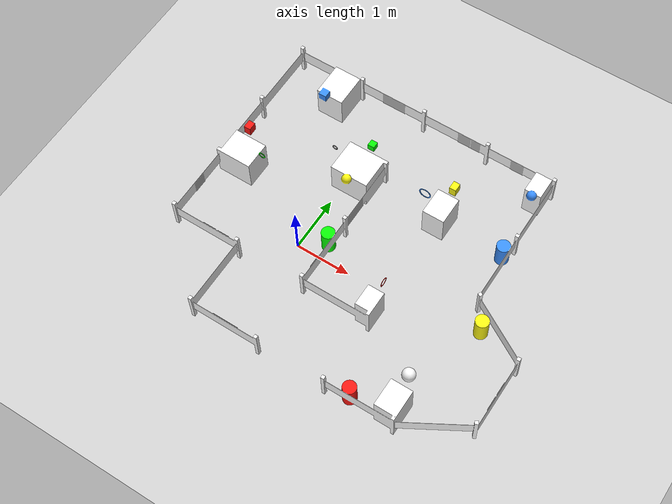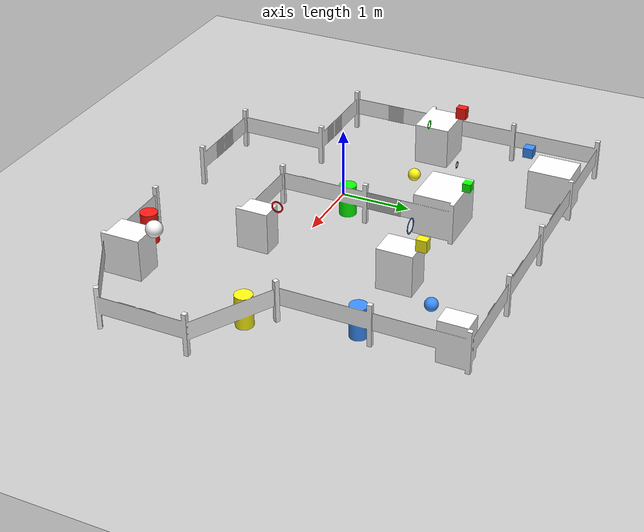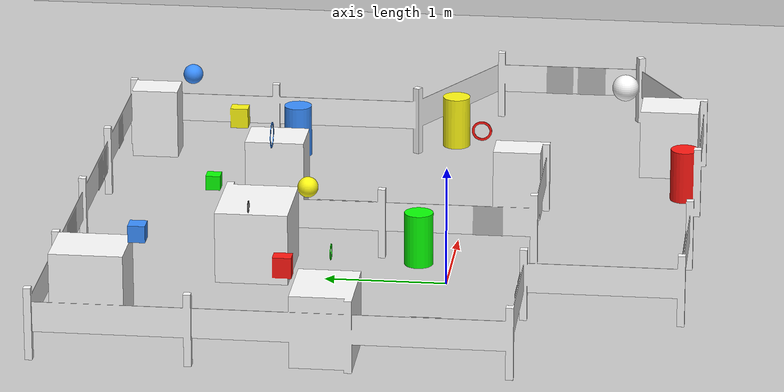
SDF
<sdf version="1.6">
 <world name="default">
  <model name="ground_plane">
   <static>1</static>
   <link name="link">
    <collision name="collision">
     <geometry><plane><normal>0 0 1</normal><size>100 100</size></plane></geometry>
     <surface><friction><ode><mu>100</mu><mu2>50</mu2></ode></friction></surface>
    </collision>
    <visual name="visual">
     <cast_shadows>0</cast_shadows>
     <geometry><plane><normal>0 0 1</normal><size>100 100</size></plane></geometry>
     <material>
      <script><uri>file://media/materials/scripts/gazebo.material</uri><name>Gazebo/Grey</name></script>
     </material>
    </visual>
   </link>
  </model>
  <model name="classroom">
   <pose>-2 -2 0 0 -0 0</pose>
   <static>1</static>
   <link name="body">
    <collision name="classroom_collision">
     <geometry><mesh><uri>model://task3/meshes/rins_eval3_1.dae</uri><scale>1 1 1</scale></mesh></geometry>
    </collision>
    <visual name="visual">
     <geometry><mesh><uri>model://task3/meshes/rins_eval3_1.dae</uri><scale>1 1 1</scale></mesh></geometry>
    </visual>
    <sensor name="my_collision sensor" type="contact">
     <contact><collision>classroom_collision</collision><topic>/collision_contact</topic></contact>
     <plugin name="gazebo_ros_bumper_controller" filename="libgazebo_ros_bumper.so">
      <alwaysOn>true</alwaysOn>
      <updateRate>1</updateRate>
      <bumperTopicName>/turtlebot_contact</bumperTopicName>
      <frameName>world</frameName>
     </plugin>
    </sensor>
   </link>
  </model>
  <gravity>0 0 -9.8</gravity>
  <magnetic_field>6e-06 2.3e-05 -4.2e-05</magnetic_field>
  <atmosphere type="adiabatic"/>
  <physics name="default_physics" default="0" type="ode">
   <max_step_size>0.001</max_step_size>
   <real_time_factor>1</real_time_factor>
   <real_time_update_rate>1000</real_time_update_rate>
  </physics>
  <scene><ambient>0.4 0.4 0.4 1</ambient><background>0.7 0.7 0.7 1</background><shadows>1</shadows></scene>
  <spherical_coordinates>
   <surface_model>EARTH_WGS84</surface_model>
   <latitude_deg>0</latitude_deg>
   <longitude_deg>0</longitude_deg>
   <elevation>0</elevation>
   <heading_deg>0</heading_deg>
  </spherical_coordinates>
  <light name="user_point_light_0" type="point">
   <pose>1.19163 -5.71136 1 0 -0 0</pose>
   <diffuse>0.5 0.5 0.5 1</diffuse>
   <specular>0.1 0.1 0.1 1</specular>
   <attenuation>
    <range>20</range>
    <constant>0.5</constant>
    <linear>0.01</linear>
    <quadratic>0.001</quadratic>
   </attenuation>
   <cast_shadows>0</cast_shadows>
   <direction>0 0 -1</direction>
  </light>
  <light name="user_point_light_1" type="point">
   <pose>0.885705 7.09617 1 0 -0 0</pose>
   <diffuse>0.5 0.5 0.5 1</diffuse>
   <specular>0.1 0.1 0.1 1</specular>
   <attenuation>
    <range>20</range>
    <constant>0.5</constant>
    <linear>0.01</linear>
    <quadratic>0.001</quadratic>
   </attenuation>
   <cast_shadows>0</cast_shadows>
   <direction>0 0 -1</direction>
  </light>
  <light name="user_point_light_2" type="point">
   <pose>6.23135 0.689789 1 0 -0 0</pose>
   <diffuse>0.5 0.5 0.5 1</diffuse>
   <specular>0.1 0.1 0.1 1</specular>
   <attenuation>
    <range>20</range>
    <constant>0.5</constant>
    <linear>0.01</linear>
    <quadratic>0.001</quadratic>
   </attenuation>
   <cast_shadows>0</cast_shadows>
   <direction>0 0 -1</direction>
  </light>
  <light name="user_point_light_3" type="point">
   <pose>-4.26016 1.55995 1 0 -0 0</pose>
   <diffuse>0.5 0.5 0.5 1</diffuse>
   <specular>0.1 0.1 0.1 1</specular>
   <attenuation>
    <range>20</range>
    <constant>0.5</constant>
    <linear>0.01</linear>
    <quadratic>0.001</quadratic>
   </attenuation>
   <cast_shadows>0</cast_shadows>
   <direction>0 0 -1</direction>
  </light>
  <light name="user_directional_light_0" type="directional">
   <pose>0.756832 0.935235 1 0 -0 0</pose>
   <diffuse>0.5 0.5 0.5 1</diffuse>
   <specular>0.1 0.1 0.1 1</specular>
   <direction>0.1 0.1 -0.9</direction>
   <attenuation>
    <range>20</range>
    <constant>0.5</constant>
    <linear>0.01</linear>
    <quadratic>0.001</quadratic>
   </attenuation>
  </light>
 </world>
</sdf>
